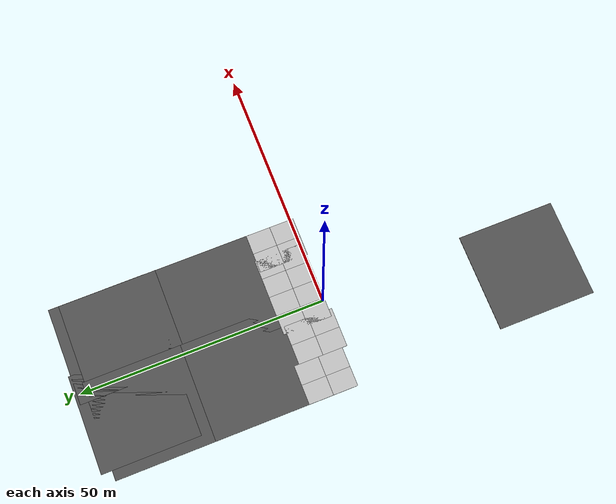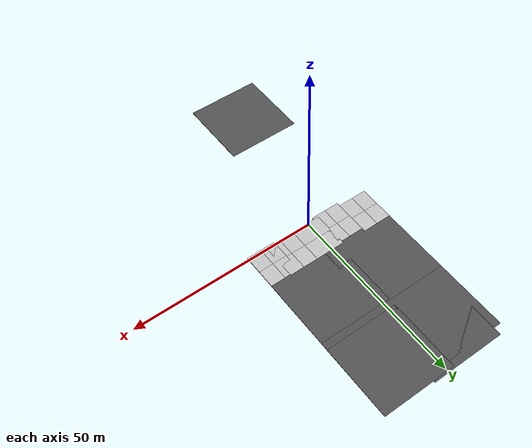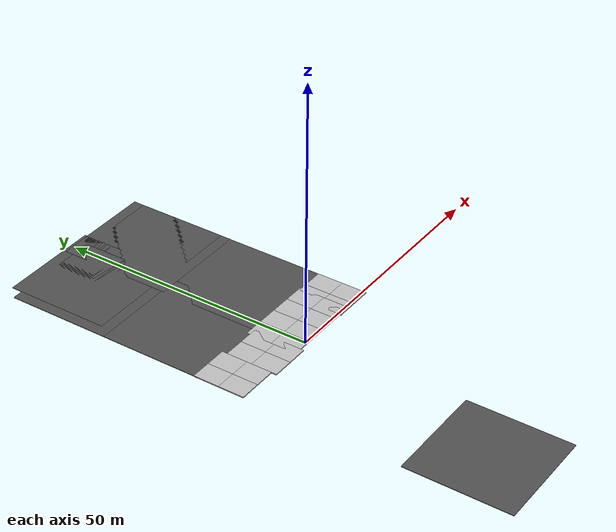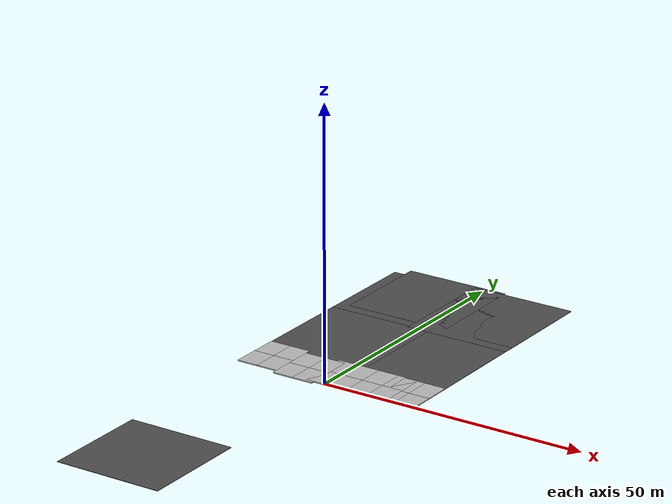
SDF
<sdf version="1.5">
 <world name="default">
  <model name="asphalt_plane">
   <static>1</static>
   <link name="link">
    <collision name="collision"><geometry><box><size>20 20 0.1</size></box></geometry></collision>
    <visual name="visual">
     <cast_shadows>0</cast_shadows>
     <geometry><box><size>20 20 0.1</size></box></geometry>
     <material>
      <script>
       <uri>model://asphalt_plane/materials/scripts</uri>
       <uri>model://asphalt_plane/materials/textures</uri>
       <name>vrc/asphalt</name>
      </script>
     </material>
    </visual>
   </link>
   <pose>-8 -40 0 0 -0 0</pose>
  </model>
  <model name="asphalt_plane_2">
   <static>1</static>
   <link name="link">
    <collision name="collision"><geometry><box><size>20 20 0.1</size></box></geometry></collision>
    <visual name="visual">
     <cast_shadows>0</cast_shadows>
     <geometry><box><size>20 20 0.1</size></box></geometry>
     <material>
      <script>
       <uri>model://asphalt_plane/materials/scripts</uri>
       <uri>model://asphalt_plane/materials/textures</uri>
       <name>vrc/asphalt</name>
      </script>
     </material>
    </visual>
   </link>
   <pose>-8 19 0 0 -0 0</pose>
  </model>
  <model name="asphalt_plane_3">
   <static>1</static>
   <link name="link">
    <collision name="collision"><geometry><box><size>20 20 0.1</size></box></geometry></collision>
    <visual name="visual">
     <cast_shadows>0</cast_shadows>
     <geometry><box><size>20 20 0.1</size></box></geometry>
     <material>
      <script>
       <uri>model://asphalt_plane/materials/scripts</uri>
       <uri>model://asphalt_plane/materials/textures</uri>
       <name>vrc/asphalt</name>
      </script>
     </material>
    </visual>
   </link>
   <pose>-8 39 0 0 -0 0</pose>
  </model>
  <model name="asphalt_plane_3_clone_2">
   <static>1</static>
   <link name="link">
    <collision name="collision"><geometry><box><size>20 20 0.1</size></box></geometry></collision>
    <visual name="visual">
     <cast_shadows>0</cast_shadows>
     <geometry><box><size>20 20 0.1</size></box></geometry>
     <material>
      <script>
       <uri>model://asphalt_plane/materials/scripts</uri>
       <uri>model://asphalt_plane/materials/textures</uri>
       <name>vrc/asphalt</name>
      </script>
     </material>
    </visual>
   </link>
   <pose>8.01536 18.6666 0 0 -0 0</pose>
  </model>
  <model name="asphalt_plane_3_clone_3">
   <static>1</static>
   <link name="link">
    <collision name="collision"><geometry><box><size>20 20 0.1</size></box></geometry></collision>
    <visual name="visual">
     <cast_shadows>0</cast_shadows>
     <geometry><box><size>20 20 0.1</size></box></geometry>
     <material>
      <script>
       <uri>model://asphalt_plane/materials/scripts</uri>
       <uri>model://asphalt_plane/materials/textures</uri>
       <name>vrc/asphalt</name>
      </script>
     </material>
    </visual>
   </link>
   <pose>8.03453 38.5627 0 0 -0 0</pose>
  </model>
  <model name="mud_box_clone_4">
   <static>1</static>
   <link name="link">
    <collision name="collision"><geometry><box><size>8 10 0.2</size></box></geometry></collision>
    <visual name="visual_1">
     <pose>-2 2.5 0 0 -0 0</pose>
     <cast_shadows>0</cast_shadows>
     <geometry><box><size>4 5 0.2</size></box></geometry>
     <material>
      <script>
       <uri>model://mud_box/materials/scripts</uri>
       <uri>model://mud_box/materials/textures</uri>
       <name>vrc/mud</name>
      </script>
     </material>
    </visual>
    <visual name="visual_2">
     <pose>2 2.5 0 0 -0 0</pose>
     <cast_shadows>0</cast_shadows>
     <geometry><box><size>4 5 0.2</size></box></geometry>
     <material>
      <script>
       <uri>model://mud_box/materials/scripts</uri>
       <uri>model://mud_box/materials/textures</uri>
       <name>vrc/mud</name>
      </script>
     </material>
    </visual>
    <visual name="visual_3">
     <pose>2 -2.5 0 0 -0 0</pose>
     <cast_shadows>0</cast_shadows>
     <geometry><box><size>4 5 0.2</size></box></geometry>
     <material>
      <script>
       <uri>model://mud_box/materials/scripts</uri>
       <uri>model://mud_box/materials/textures</uri>
       <name>vrc/mud</name>
      </script>
     </material>
    </visual>
    <visual name="visual_4">
     <pose>-2 -2.5 0 0 -0 0</pose>
     <cast_shadows>0</cast_shadows>
     <geometry><box><size>4 5 0.2</size></box></geometry>
     <material>
      <script>
       <uri>model://mud_box/materials/scripts</uri>
       <uri>model://mud_box/materials/textures</uri>
       <name>vrc/mud</name>
      </script>
     </material>
    </visual>
   </link>
   <pose>-14 5 0 0 -0 0</pose>
  </model>
  <model name="mud_box_clone_5">
   <static>1</static>
   <link name="link">
    <collision name="collision"><geometry><box><size>8 10 0.2</size></box></geometry></collision>
    <visual name="visual_1">
     <pose>-2 2.5 0 0 -0 0</pose>
     <cast_shadows>0</cast_shadows>
     <geometry><box><size>4 5 0.2</size></box></geometry>
     <material>
      <script>
       <uri>model://mud_box/materials/scripts</uri>
       <uri>model://mud_box/materials/textures</uri>
       <name>vrc/mud</name>
      </script>
     </material>
    </visual>
    <visual name="visual_2">
     <pose>2 2.5 0 0 -0 0</pose>
     <cast_shadows>0</cast_shadows>
     <geometry><box><size>4 5 0.2</size></box></geometry>
     <material>
      <script>
       <uri>model://mud_box/materials/scripts</uri>
       <uri>model://mud_box/materials/textures</uri>
       <name>vrc/mud</name>
      </script>
     </material>
    </visual>
    <visual name="visual_3">
     <pose>2 -2.5 0 0 -0 0</pose>
     <cast_shadows>0</cast_shadows>
     <geometry><box><size>4 5 0.2</size></box></geometry>
     <material>
      <script>
       <uri>model://mud_box/materials/scripts</uri>
       <uri>model://mud_box/materials/textures</uri>
       <name>vrc/mud</name>
      </script>
     </material>
    </visual>
    <visual name="visual_4">
     <pose>-2 -2.5 0 0 -0 0</pose>
     <cast_shadows>0</cast_shadows>
     <geometry><box><size>4 5 0.2</size></box></geometry>
     <material>
      <script>
       <uri>model://mud_box/materials/scripts</uri>
       <uri>model://mud_box/materials/textures</uri>
       <name>vrc/mud</name>
      </script>
     </material>
    </visual>
   </link>
   <pose>-6 4 0 0 -0 0</pose>
  </model>
  <model name="mud_box_clone_6">
   <static>1</static>
   <link name="link">
    <collision name="collision"><geometry><box><size>8 10 0.2</size></box></geometry></collision>
    <visual name="visual_1">
     <pose>-2 2.5 0 0 -0 0</pose>
     <cast_shadows>0</cast_shadows>
     <geometry><box><size>4 5 0.2</size></box></geometry>
     <material>
      <script>
       <uri>model://mud_box/materials/scripts</uri>
       <uri>model://mud_box/materials/textures</uri>
       <name>vrc/mud</name>
      </script>
     </material>
    </visual>
    <visual name="visual_2">
     <pose>2 2.5 0 0 -0 0</pose>
     <cast_shadows>0</cast_shadows>
     <geometry><box><size>4 5 0.2</size></box></geometry>
     <material>
      <script>
       <uri>model://mud_box/materials/scripts</uri>
       <uri>model://mud_box/materials/textures</uri>
       <name>vrc/mud</name>
      </script>
     </material>
    </visual>
    <visual name="visual_3">
     <pose>2 -2.5 0 0 -0 0</pose>
     <cast_shadows>0</cast_shadows>
     <geometry><box><size>4 5 0.2</size></box></geometry>
     <material>
      <script>
       <uri>model://mud_box/materials/scripts</uri>
       <uri>model://mud_box/materials/textures</uri>
       <name>vrc/mud</name>
      </script>
     </material>
    </visual>
    <visual name="visual_4">
     <pose>-2 -2.5 0 0 -0 0</pose>
     <cast_shadows>0</cast_shadows>
     <geometry><box><size>4 5 0.2</size></box></geometry>
     <material>
      <script>
       <uri>model://mud_box/materials/scripts</uri>
       <uri>model://mud_box/materials/textures</uri>
       <name>vrc/mud</name>
      </script>
     </material>
    </visual>
   </link>
   <pose>0.523105 4.59403 0 0 -0 0</pose>
  </model>
  <model name="mud_box_clone_7">
   <static>1</static>
   <link name="link">
    <collision name="collision"><geometry><box><size>8 10 0.2</size></box></geometry></collision>
    <visual name="visual_1">
     <pose>-2 2.5 0 0 -0 0</pose>
     <cast_shadows>0</cast_shadows>
     <geometry><box><size>4 5 0.2</size></box></geometry>
     <material>
      <script>
       <uri>model://mud_box/materials/scripts</uri>
       <uri>model://mud_box/materials/textures</uri>
       <name>vrc/mud</name>
      </script>
     </material>
    </visual>
    <visual name="visual_2">
     <pose>2 2.5 0 0 -0 0</pose>
     <cast_shadows>0</cast_shadows>
     <geometry><box><size>4 5 0.2</size></box></geometry>
     <material>
      <script>
       <uri>model://mud_box/materials/scripts</uri>
       <uri>model://mud_box/materials/textures</uri>
       <name>vrc/mud</name>
      </script>
     </material>
    </visual>
    <visual name="visual_3">
     <pose>2 -2.5 0 0 -0 0</pose>
     <cast_shadows>0</cast_shadows>
     <geometry><box><size>4 5 0.2</size></box></geometry>
     <material>
      <script>
       <uri>model://mud_box/materials/scripts</uri>
       <uri>model://mud_box/materials/textures</uri>
       <name>vrc/mud</name>
      </script>
     </material>
    </visual>
    <visual name="visual_4">
     <pose>-2 -2.5 0 0 -0 0</pose>
     <cast_shadows>0</cast_shadows>
     <geometry><box><size>4 5 0.2</size></box></geometry>
     <material>
      <script>
       <uri>model://mud_box/materials/scripts</uri>
       <uri>model://mud_box/materials/textures</uri>
       <name>vrc/mud</name>
      </script>
     </material>
    </visual>
   </link>
   <pose>8.51353 4.58193 0 0 -0 0</pose>
  </model>
  <model name="mud_box_clone_8">
   <static>1</static>
   <link name="link">
    <collision name="collision"><geometry><box><size>8 10 0.2</size></box></geometry></collision>
    <visual name="visual_1">
     <pose>-2 2.5 0 0 -0 0</pose>
     <cast_shadows>0</cast_shadows>
     <geometry><box><size>4 5 0.2</size></box></geometry>
     <material>
      <script>
       <uri>model://mud_box/materials/scripts</uri>
       <uri>model://mud_box/materials/textures</uri>
       <name>vrc/mud</name>
      </script>
     </material>
    </visual>
    <visual name="visual_2">
     <pose>2 2.5 0 0 -0 0</pose>
     <cast_shadows>0</cast_shadows>
     <geometry><box><size>4 5 0.2</size></box></geometry>
     <material>
      <script>
       <uri>model://mud_box/materials/scripts</uri>
       <uri>model://mud_box/materials/textures</uri>
       <name>vrc/mud</name>
      </script>
     </material>
    </visual>
    <visual name="visual_3">
     <pose>2 -2.5 0 0 -0 0</pose>
     <cast_shadows>0</cast_shadows>
     <geometry><box><size>4 5 0.2</size></box></geometry>
     <material>
      <script>
       <uri>model://mud_box/materials/scripts</uri>
       <uri>model://mud_box/materials/textures</uri>
       <name>vrc/mud</name>
      </script>
     </material>
    </visual>
    <visual name="visual_4">
     <pose>-2 -2.5 0 0 -0 0</pose>
     <cast_shadows>0</cast_shadows>
     <geometry><box><size>4 5 0.2</size></box></geometry>
     <material>
      <script>
       <uri>model://mud_box/materials/scripts</uri>
       <uri>model://mud_box/materials/textures</uri>
       <name>vrc/mud</name>
      </script>
     </material>
    </visual>
   </link>
   <pose>13.9867 4.34478 0 0 -0 0</pose>
  </model>
  <model name="asphalt_plane_0">
   <static>1</static>
   <link name="link">
    <collision name="collision"><geometry><box><size>20 20 0.1</size></box></geometry></collision>
    <visual name="visual">
     <cast_shadows>0</cast_shadows>
     <geometry><box><size>20 20 0.1</size></box></geometry>
     <material>
      <script>
       <uri>model://asphalt_plane/materials/scripts</uri>
       <uri>model://asphalt_plane/materials/textures</uri>
       <name>vrc/asphalt</name>
      </script>
     </material>
    </visual>
   </link>
   <pose>-5.92239 41.1306 0 0 -0 0</pose>
  </model>
  <model name="asphalt_plane_0_1">
   <static>1</static>
   <link name="link">
    <collision name="collision"><geometry><box><size>20 20 0.1</size></box></geometry></collision>
    <visual name="visual">
     <cast_shadows>0</cast_shadows>
     <geometry><box><size>20 20 0.1</size></box></geometry>
     <material>
      <script>
       <uri>model://asphalt_plane/materials/scripts</uri>
       <uri>model://asphalt_plane/materials/textures</uri>
       <name>vrc/asphalt</name>
      </script>
     </material>
    </visual>
   </link>
   <pose>8.05246 40.6615 0 0 -0 0</pose>
  </model>
 </world>
</sdf>
